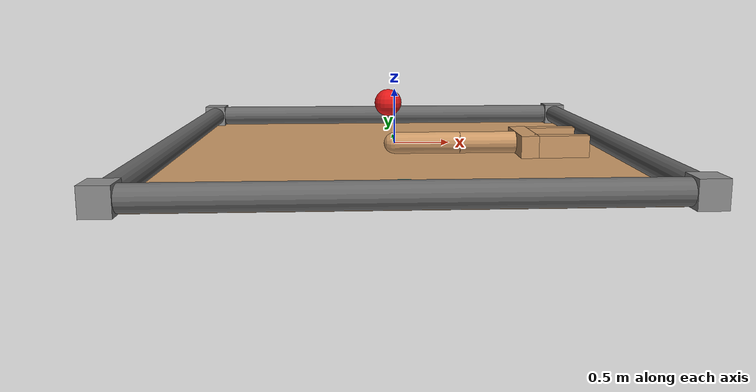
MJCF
<mujoco model="planar_robot">
    <compiler angle="degree"/>

    <option timestep="0.001" iterations="50" solver="Newton" jacobian="sparse" cone="elliptic" tolerance="1e-10"/>

    <size njmax="5000" nconmax="2000" nstack="5000000"/>

    <default>
        <geom rgba=".8 .6 .4 1"/>

        <default class="object">
            <geom type="sphere" material="MatObj" rgba=".9 .1 .1 1" size="0.15"/>
        </default>

        <default class="obj_label">
            <geom type="box" material="MatObj" rgba="1 0 0 1" size="0.05 0.05 0.001"/>
        </default>

        <default class="target_label">
            <geom type="box" material="MatObj" rgba=".4 .9 .9 1" size="0.05 0.05 0.001"/>
        </default>

        <default class="border">
            <geom type="capsule" size="0.1" rgba=".4 .4 .4 1"/>
        </default>

        <default class="borderpost">
            <geom type="box" size="0.11 0.11 0.11" rgba=".55 .55 .55 1"/>
        </default>
    </default>
    <asset>
        <texture type="skybox" builtin="gradient" width="128" height="128" rgb1=".4 .6 .8" rgb2="0 0 0"/>
        <texture name="texplane" type="2d" builtin="checker" rgb1=".2 .3 .4" rgb2=".1 0.15 0.2" width="512" height="512"/>
        <texture name="texgeom" type="cube" builtin="flat" mark="cross" width="128" height="128" rgb1="0.6 0.6 0.6" rgb2="0.6 0.6 0.6" markrgb="1 1 1"/>
        <material name='MatObj' texture="texgeom" texuniform="true"/>
        <material name='MatPlane' reflectance='0' texture="texplane" texrepeat="1 1" texuniform="true"/>
    </asset>

    <visual>
        <quality shadowsize="4096" offsamples="8"/>
        <map znear="0.1" force="0.05"/>
    </visual>

    <statistic extent="4"/>

    <worldbody>
        <light directional="true" diffuse=".8 .8 .8" pos="0 0 10" dir="0 0 -10"/>

        <geom name='floor' pos='0 0 -0.1' size='2 2 .125' type='plane' material="MatPlane" condim='3'/>

        <geom class="border" fromto="-2 2 0 2 2 0"  />
        <geom class="border" fromto="-2 -2 0 2 -2 0"  />
        <geom class="border" fromto="2 2 0 2 -2 0"  />
        <geom class="border" fromto="-2 2 0 -2 -2 0"  />
        <geom class="borderpost" pos="2 2 0"/>
        <geom class="borderpost" pos="-2 2 0"/>
        <geom class="borderpost" pos="2 -2 0"/>
        <geom class="borderpost" pos="-2 -2 0"/>
        <geom name="target_pose" class="target_label" pos= "0 -1.5 -0.02" quat="1 0 0 0"/>

        <body name="planar_robot">
            <geom type="capsule" fromto="0 0 0 0.6 0 0" size="0.1"/>
            <joint type="hinge" pos="0 0 0" axis="0 0 1"/>
            <body>
                <geom type="capsule" fromto="0.6 0 0 1.2 0 0" size="0.1"/>
                <joint type="hinge" pos="0.6 0 0" axis="0 0 1" range="-120 120" damping='5' stiffness='10' armature='0.01'/>
                <body>
                    <geom type="box" pos="1.2 0 0.0" size="0.08 0.3 0.1"/>
                    <body>
                        <geom type="box" pos="1.5 -0.24 0.0" size="0.24 0.05 0.1"/>
                        <joint type="hinge" pos="1.2 -0.24 0" axis="0 0 1" range="-30 0" damping='5' stiffness='10' armature='0.01'/>
                    </body>
                    <body>
                        <geom type="box" pos="1.5 0.24 0.0" size="0.24 0.05 0.1"/>
                        <joint type="hinge" pos="1.2 0.24 0" axis="0 0 1" range="0 30" damping='5' stiffness='10' armature='0.01'/>
                    </body>

                </body>
            </body>
        </body>

        <body name="targetObj" pos="0 1.5 0.2" quat="1 0 0 0">
            <freejoint/>
            <geom class="object"/>
        </body>

    </worldbody>
</mujoco>
